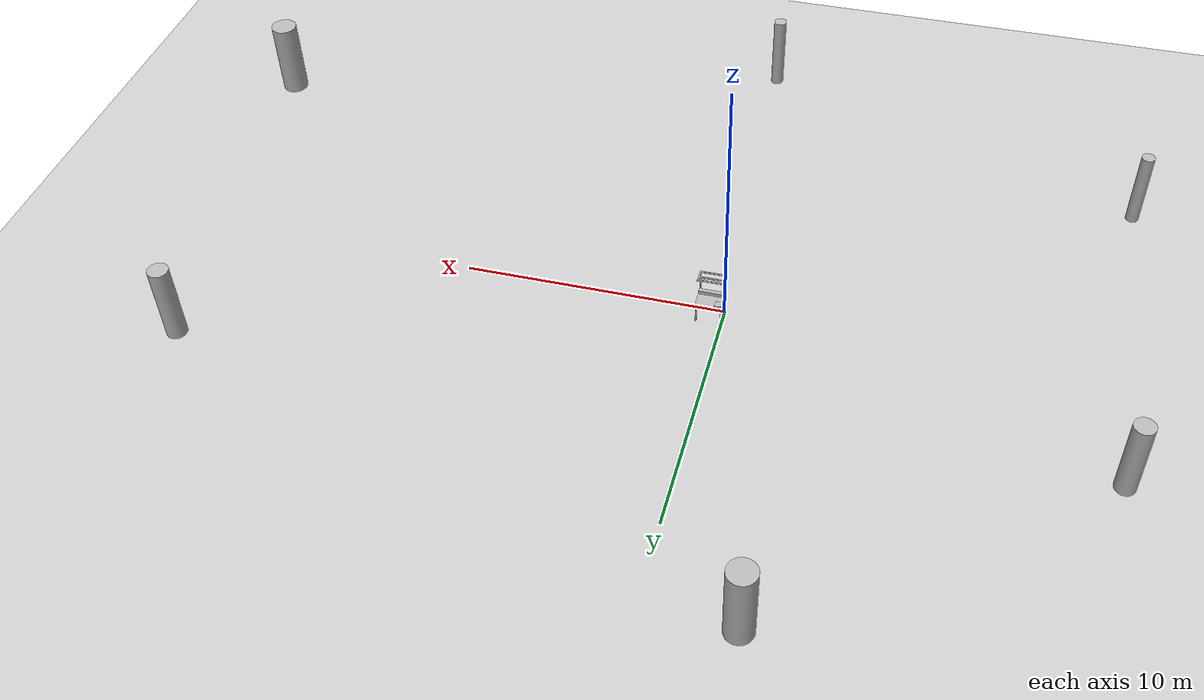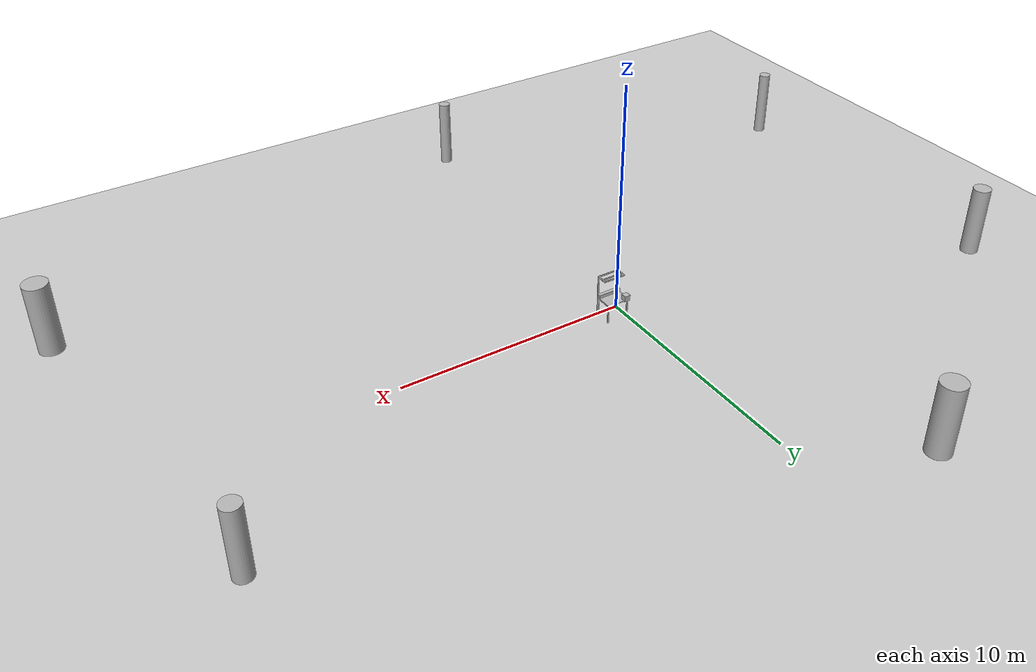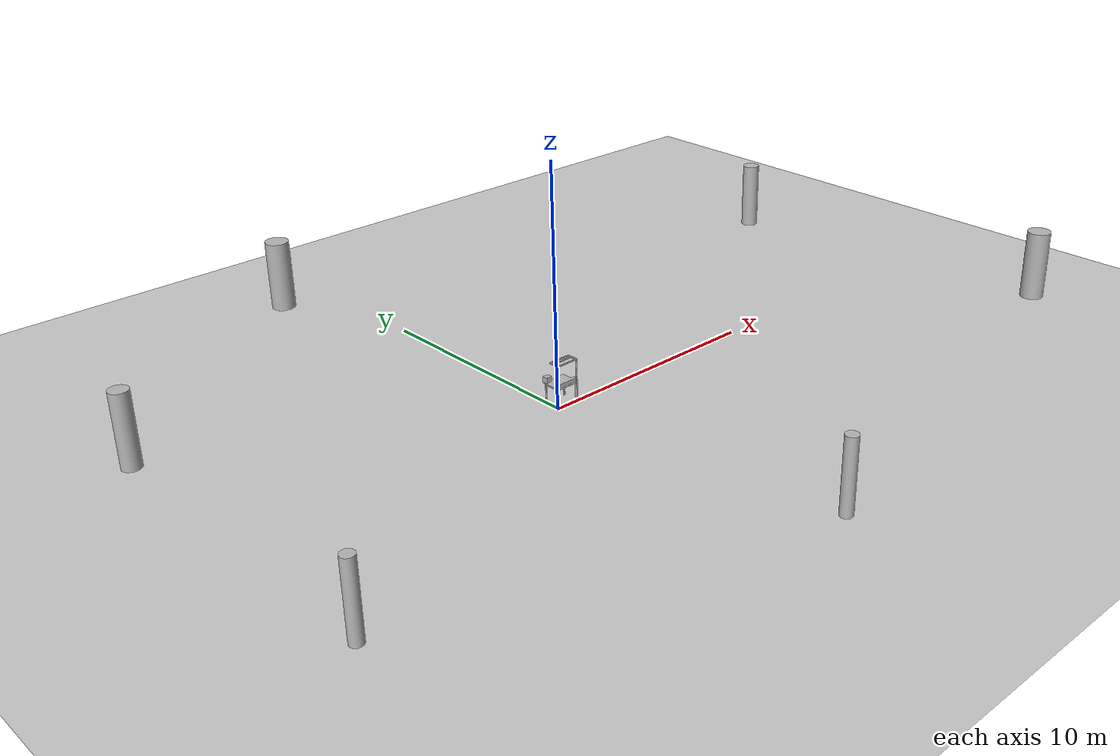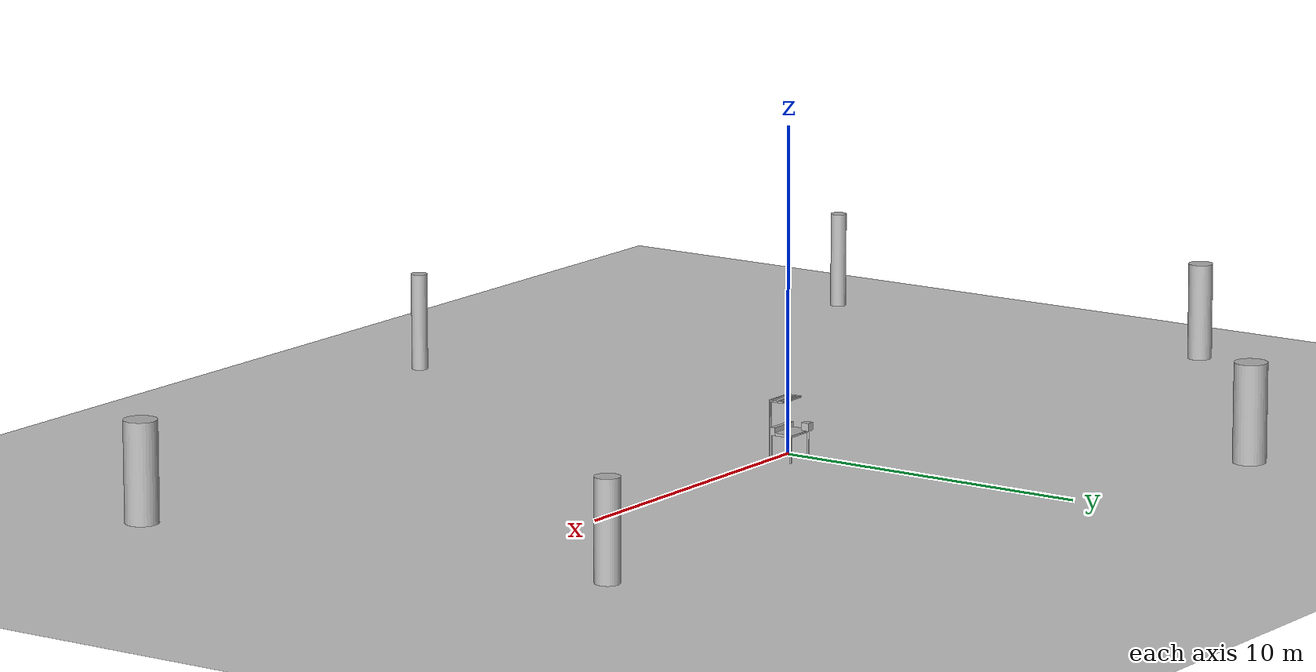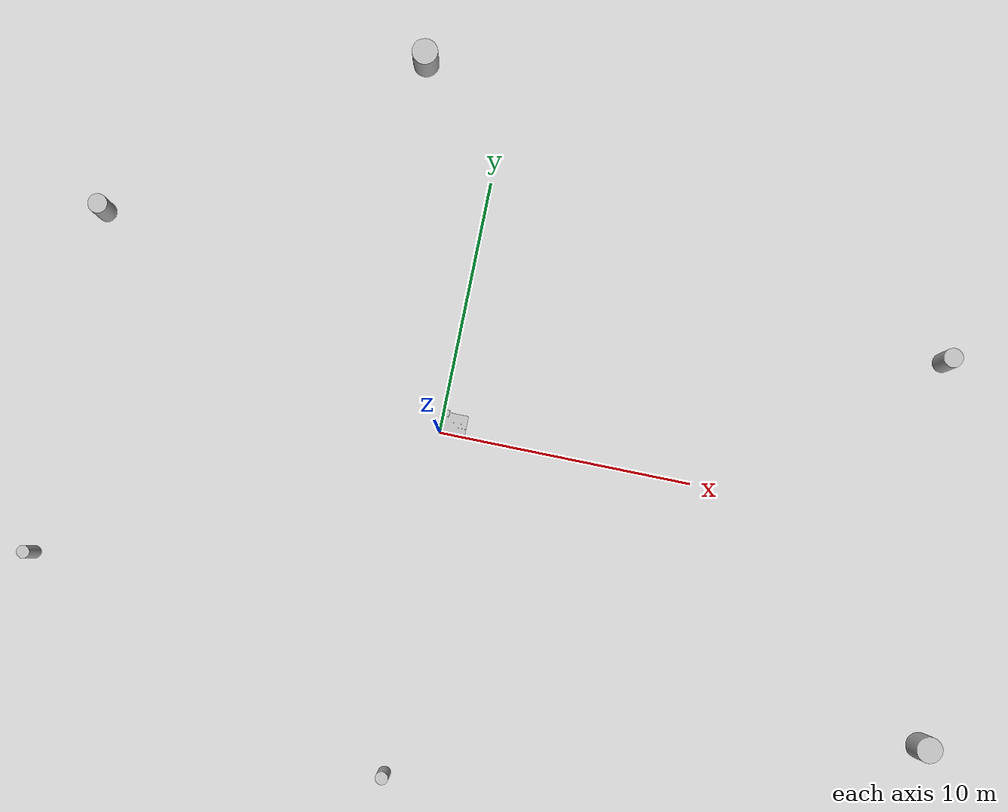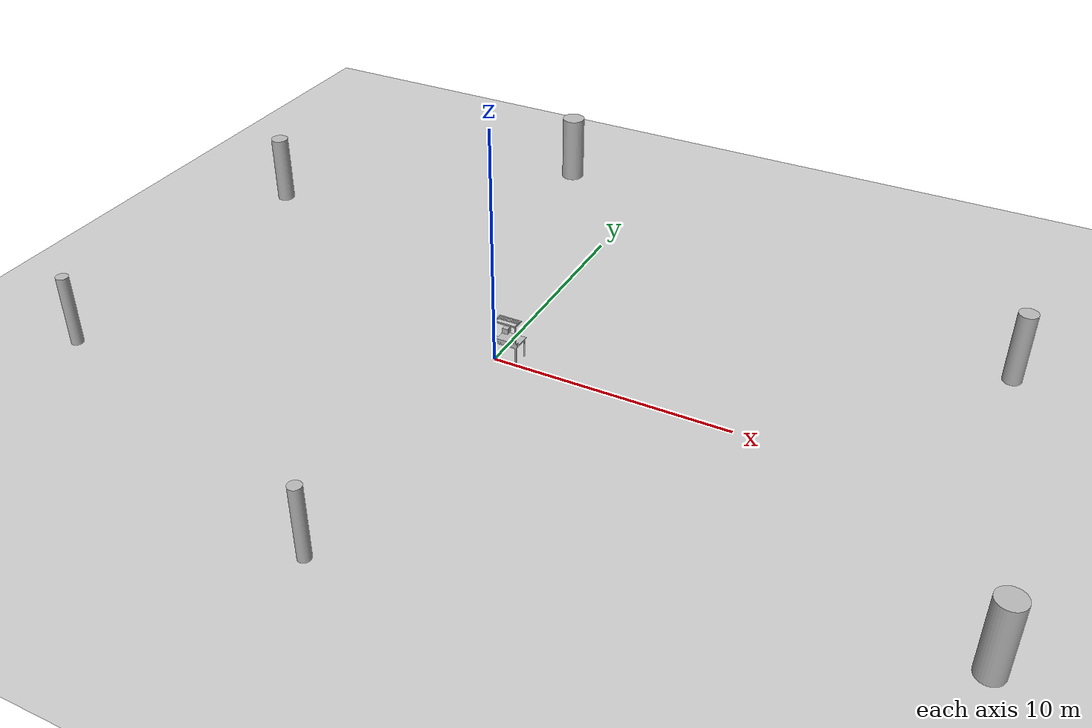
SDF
<?xml version="1.0" ?>
<sdf version="1.4">
  <world name="default">
    <physics type='ode'>
      <gravity>0 0 -9.81</gravity>
      <!-- max step size has to be a multiple of the desired task rate-->
      <max_step_size>0.001</max_step_size>
      <real_time_factor>1</real_time_factor>
    </physics>
    <!-- A global light source -->
    <include>
      <uri>model://sun</uri>
    </include>
    <!-- A ground plane -->
    <include>
      <uri>model://ground_plane</uri>
    </include>
    <include>
      <name>tavolo</name>
      <uri>model://tavolo</uri>
      <pose>0.0 0.0 0.0 0 0 0</pose>
    </include>

    <include>
      <name>box</name>
      <uri>model://box</uri>
      <pose> 0.125 0.75 0.975   0 0 0</pose>
    </include>

    <include>
      <name>cylinder </name>
      <uri>model://cylinder</uri>
      <pose>0.6 0.25  1.0   0 0 0</pose>
    </include>

    <gui>
    <camera name="gzclient_camera">
      <pose>1. 3.2 2.2 0. 0.4 -1.75</pose>
    </camera>
    </gui>
  </world>
</sdf>

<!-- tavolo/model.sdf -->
<sdf version="1.4">

<physics type="ode">

      <ode>

        <constraints>
          <contact_max_correcting_vel>0.1</contact_max_correcting_vel>
          <contact_surface_layer>0.0001</contact_surface_layer>
        </constraints>
      </ode>
	<max_contacts>10</max_contacts>
	</physics>

	<model name="tavolo">
	    <static>true</static>
		<link name="link">

		     <collision name="base">
			<pose>0.5 0.4 0.85 0 0 0</pose>
			<geometry>
			  <box>
			    <size>1 0.8 0.04</size>
			  </box>
			</geometry>

				<!-- see https://gazebosim.org/tutorials?tut=physics_params&cat=physics-->
				 <surface>
				  <bounce>
				    <restitution_coefficient>0.01</restitution_coefficient>
				    <threshold>5.0</threshold>
				  </bounce>
				  <friction>
				    <ode>
				      <mu>10</mu>
				      <mu2>10</mu2>
				    </ode>
				  </friction>
				  <contact>
				     <ode>
					<max_vel>0.1</max_vel>
					<min_depth>0.001</min_depth>
				        <kp>1000000.0</kp>
					<kd>1000.0</kd>
				      </ode>
			            </contact>
				</surface>

		     	</collision>

	     			<collision name="box">
				<pose>0.5 0.08 0.95 0 0 0</pose>
				<geometry>
				  <box>
				    <size>1 0.15 0.15</size>
				  </box>
				</geometry>

				 <surface>
				  <bounce>
				    <restitution_coefficient>0.01</restitution_coefficient>
				    <threshold>5.0</threshold>
				  </bounce>
				  <friction>
				    <ode>
				      <mu>10</mu>
				      <mu2>10</mu2>
				    </ode>
				  </friction>
				  <contact>
				     <ode>
					<max_vel>0.1</max_vel>
					<min_depth>0.001</min_depth>
				        <kp>1000000.0</kp>
					<kd>1000.0</kd>
				      </ode>
			            </contact>
				</surface>

			      </collision>

			   <collision name="back">
				<pose>0.5 -0.02 1.35 1.57 0 0</pose>
				<geometry>
				  <box>
				    <size>1 1.0 0.04</size>
				  </box>
				</geometry>

				 <surface>
				  <bounce>
				    <restitution_coefficient>0.01</restitution_coefficient>
				    <threshold>5.0</threshold>
				  </bounce>
				  <friction>
				    <ode>
				      <mu>10</mu>
				      <mu2>10</mu2>
				    </ode>
				  </friction>
				  <contact>
				     <ode>
					<max_vel>0.1</max_vel>
					<min_depth>0.001</min_depth>
				        <kp>1000000.0</kp>
					<kd>1000.0</kd>
				      </ode>
			            </contact>
				</surface>

			      </collision>

			<visual name="visual">
				<geometry>
					<mesh>
						<uri>model://tavolo/mesh/tavolo.stl</uri>
                                                <scale>0.001 0.001 0.001</scale>
					</mesh>
				</geometry>
			</visual>
		</link>
	</model>
</sdf>

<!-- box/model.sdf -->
<sdf version="1.4">

<model name="box">
	<static>true</static>
	<link name="link">

	<collision name="collision">
		<geometry>
		<box>
			<size>0.25 0.25 0.25</size>
		</box>
		</geometry>
	</collision>

	<visual name="visual">
		<geometry>
			<box>
			<size>0.25 0.25 0.25</size>
			</box>
		</geometry>
	</visual>
	</link>
</model>
</sdf>

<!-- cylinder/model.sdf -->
<sdf version="1.5">
    <model name="cylinder">
        <static>true</static>
        <link name="link">
            <collision name="collision1">
                <pose>20 -8.4 0 0 0 0</pose>
                <geometry>
                    <mesh>
                        <uri>model://cylinder/meshes/cylinder_1.stl</uri>
                    </mesh>
                </geometry>
            </collision>
            <visual name="visual1">

              <pose>20 -8.4 0 0 0 0</pose>
              <geometry>
              <mesh>
                 <uri>model://cylinder/meshes/cylinder_1.dae</uri>
              </mesh>
              </geometry>

              <material>
                  <script>
                      <uri>model://cylinder/materials/scripts</uri>
                      <uri>model://cylinder/materials/textures</uri>
                      <name>cylinderMat/Diffuse</name>
                  </script>
              </material>
             </visual>

             <collision name="collision2">
                <pose>-4 13.7 0 0 0 0</pose>
                <geometry>
                    <mesh>
                        <uri>model://cylinder/meshes/cylinder_1.stl</uri>
                    </mesh>
                </geometry>
            </collision>
            <visual name="visual2">

              <pose>-4 13.7 0 0 0 0</pose>
              <geometry>
              <mesh>
                 <uri>model://cylinder/meshes/cylinder_1.dae</uri>
              </mesh>
              </geometry>

              <material>
                  <script>
                      <uri>model://cylinder/materials/scripts</uri>
                      <uri>model://cylinder/materials/textures</uri>
                      <name>cylinderMat/Diffuse</name>
                  </script>
              </material>
             </visual>

             <collision name="collision3">
                <pose>-15 -8 0 0 0 0</pose>
                <geometry>
                    <mesh>
                        <uri>model://cylinder/meshes/cylinder_0_5.stl</uri>
                    </mesh>
                </geometry>
            </collision>
            <visual name="visual3">

              <pose>-15 -8 0 0 0 0</pose>
              <geometry>
              <mesh>
                 <uri>model://cylinder/meshes/cylinder_0_5.dae</uri>
              </mesh>
              </geometry>

              <material>
                  <script>
                      <uri>model://cylinder/materials/scripts</uri>
                      <uri>model://cylinder/materials/textures</uri>
                      <name>cylinderMat/Diffuse</name>
                  </script>
              </material>
             </visual>

             <collision name="collision4">
                <pose>0 -13.6 0 0 0 0</pose>
                <geometry>
                    <mesh>
                        <uri>model://cylinder/meshes/cylinder_0_5.stl</uri>
                    </mesh>
                </geometry>
            </collision>
            <visual name="visual4">

              <pose>0 -13.6 0 0 0 0</pose>
              <geometry>
              <mesh>
                 <uri>model://cylinder/meshes/cylinder_0_5.dae</uri>
              </mesh>
              </geometry>

              <material>
                  <script>
                      <uri>model://cylinder/materials/scripts</uri>
                      <uri>model://cylinder/materials/textures</uri>
                      <name>cylinderMat/Diffuse</name>
                  </script>
              </material>
             </visual>

             <collision name="collision5">
                <pose>18 6.3 0 0 0 0</pose>
                <geometry>
                    <mesh>
                        <uri>model://cylinder/meshes/cylinder_0_75.stl</uri>
                    </mesh>
                </geometry>
            </collision>
            <visual name="visual5">

              <pose>18 6.3 0 0 0 0</pose>
              <geometry>
              <mesh>
                 <uri>model://cylinder/meshes/cylinder_0_75.dae</uri>
              </mesh>
              </geometry>

              <material>
                  <script>
                      <uri>model://cylinder/materials/scripts</uri>
                      <uri>model://cylinder/materials/textures</uri>
                      <name>cylinderMat/Diffuse</name>
                  </script>
              </material>
             </visual>

             <collision name="collision6">
                <pose>-15 5.5 0 0 0 0</pose>
                <geometry>
                    <mesh>
                        <uri>model://cylinder/meshes/cylinder_0_75.stl</uri>
                    </mesh>
                </geometry>
            </collision>
            <visual name="visual6">

              <pose>-15 5.5 0 0 0 0</pose>
              <geometry>
              <mesh>
                 <uri>model://cylinder/meshes/cylinder_0_75.dae</uri>
              </mesh>
              </geometry>

              <material>
                  <script>
                      <uri>model://cylinder/materials/scripts</uri>
                      <uri>model://cylinder/materials/textures</uri>
                      <name>cylinderMat/Diffuse</name>
                  </script>
              </material>
             </visual>

        </link>
    </model>
</sdf>
